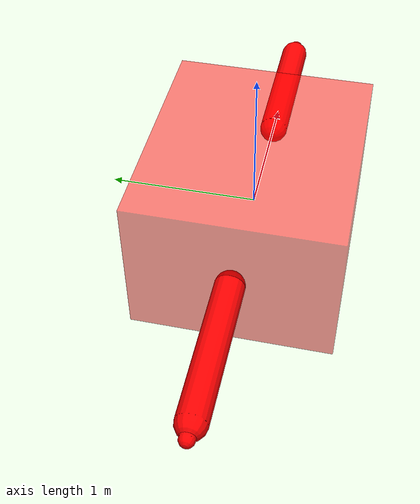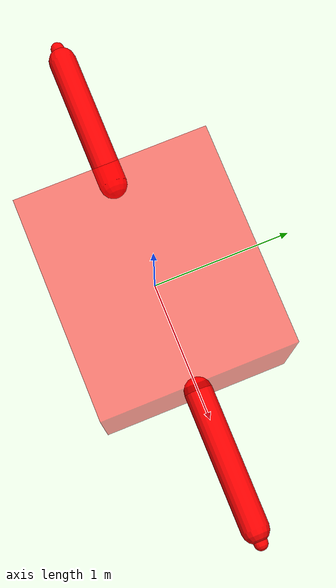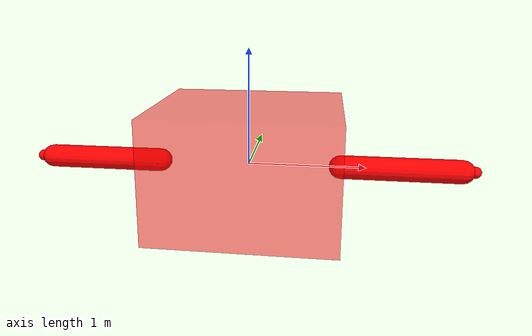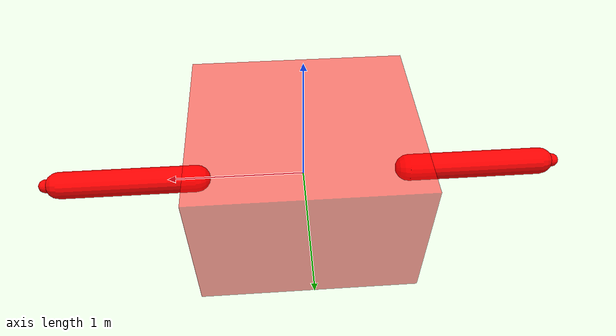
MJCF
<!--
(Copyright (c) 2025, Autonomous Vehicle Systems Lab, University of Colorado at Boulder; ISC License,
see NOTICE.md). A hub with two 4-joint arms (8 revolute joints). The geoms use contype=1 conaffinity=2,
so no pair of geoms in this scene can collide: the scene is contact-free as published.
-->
<mujoco>
  <option gravity="0 0 0" />

  <worldbody>
    <body name="hub">
      <freejoint />
      <geom name="hub_box" type="box" size="0.79 0.69 0.52" rgba="1 0 0 0.5" contype="1" conaffinity="2" mass="330" />
      <site name="hub_center" pos="0 0 0" />

      <body name="arm_1_base" pos="0.79 0 0">
        <geom name="boom_1" type="capsule" size="0.1" fromto="0 0 0 1 0 0" rgba="1 0 0 1" contype="1" conaffinity="2" mass="8" />
        <joint name="arm_1_joint_1" axis="1 0 0" />
        <joint name="arm_1_joint_2" axis="0 1 0" />

        <body name="arm_1_tip" pos="1 0 0">
		      <geom name="tip_1" type="capsule" size="0.05" fromto="0 0 0 0.1 0 0" rgba="1 0 0 1" contype="1" conaffinity="2" mass="2" />
          <joint name="arm_1_joint_3" axis="0 0 1" />
          <joint name="arm_1_joint_4" axis="0 1 0" />
          <site name="thruster_1" pos="0.1 0 0" />
        </body>
      </body>

      <body name="arm_2_base" pos="-0.79 0 0" xyaxes="-1 0 0 0 -1 0">
        <geom name="boom_2" type="capsule" size="0.1" fromto="0 0 0 1 0 0" rgba="1 0 0 1" contype="1" conaffinity="2" mass="8" />
        <joint name="arm_2_joint_1" axis="1 0 0" />
        <joint name="arm_2_joint_2" axis="0 1 0" />

        <body name="arm_2_tip" pos="1 0 0">
          <geom name="tip_2" type="capsule" size="0.05" fromto="0 0 0 0.1 0 0" rgba="1 0 0 1" contype="1" conaffinity="2" mass="2" />
          <joint name="arm_2_joint_3" axis="0 0 1" />
          <joint name="arm_2_joint_4" axis="0 1 0" />
          <site name="thruster_2" pos="0.1 0 0" />
        </body>
      </body>
    </body>
  </worldbody>

  <actuator>
    <motor name="F_thruster_1" site="thruster_1" gear="-1 0 0 0 0 0" />
	<motor name="F_thruster_2" site="thruster_2" gear="-1 0 0 0 0 0" />

    <motor name="u_arm_1_joint_1" joint="arm_1_joint_1" gear="1" />
    <motor name="u_arm_1_joint_2" joint="arm_1_joint_2" gear="1" />
    <motor name="u_arm_1_joint_3" joint="arm_1_joint_3" gear="1" />
    <motor name="u_arm_1_joint_4" joint="arm_1_joint_4" gear="1" />

    <motor name="u_arm_2_joint_1" joint="arm_2_joint_1" gear="1" />
    <motor name="u_arm_2_joint_2" joint="arm_2_joint_2" gear="1" />
    <motor name="u_arm_2_joint_3" joint="arm_2_joint_3" gear="1" />
    <motor name="u_arm_2_joint_4" joint="arm_2_joint_4" gear="1" />

    <motor name="tau_prescribed_1" site="hub_center" gear="0 0 0 1 0 0" />
    <motor name="tau_prescribed_2" site="hub_center" gear="0 0 0 0 1 0" />
    <motor name="tau_prescribed_3" site="hub_center" gear="0 0 0 0 0 1" />
  </actuator>
</mujoco>
